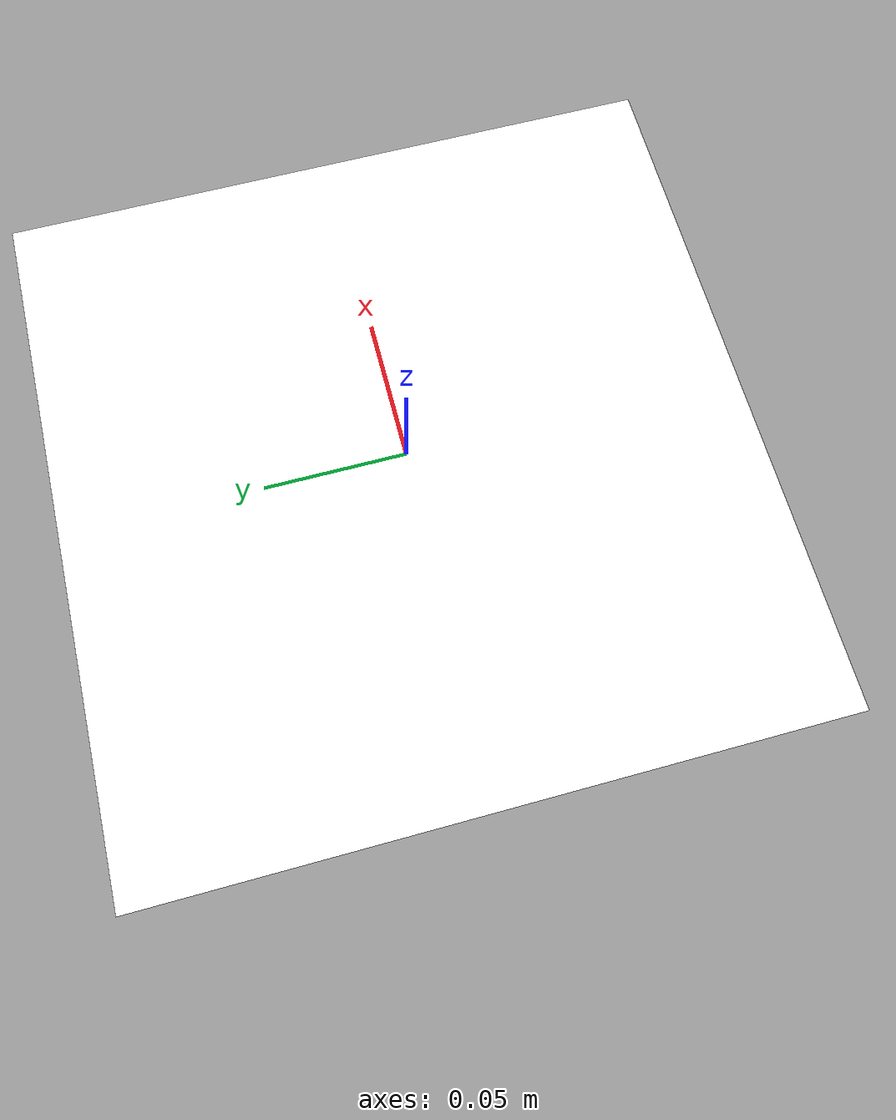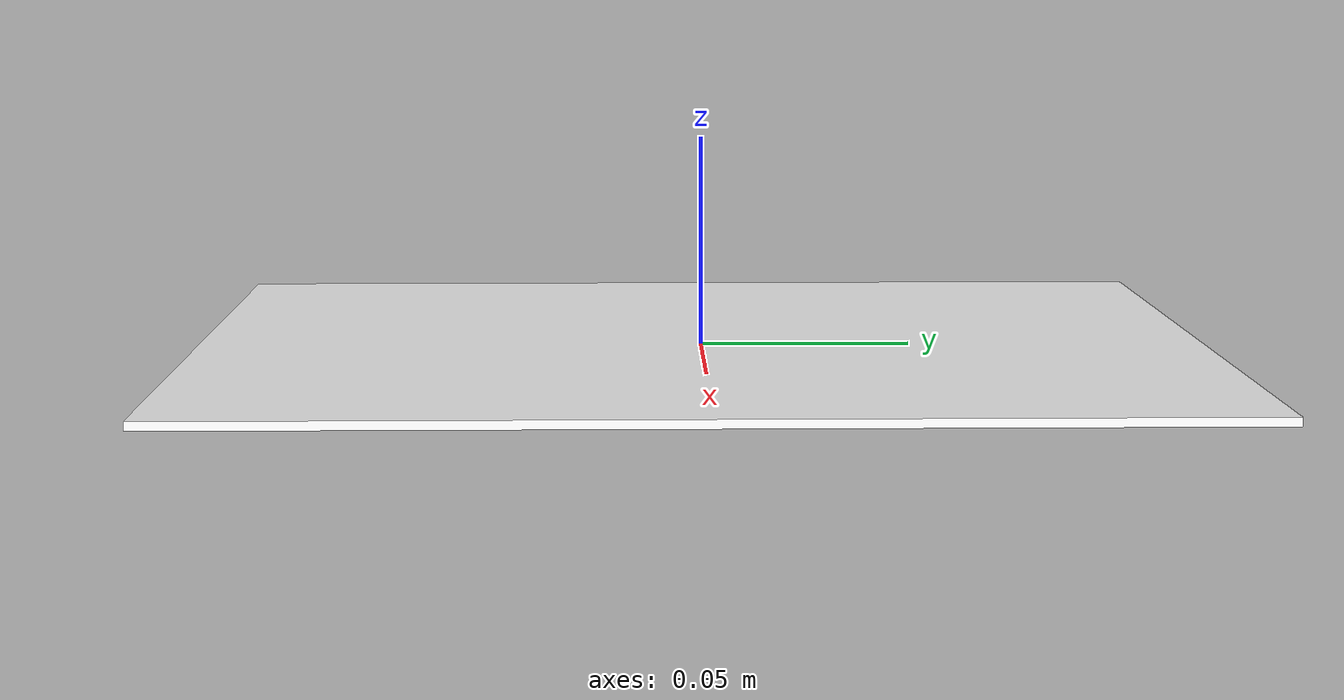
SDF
<?xml version="1.0"?>
<sdf version="1.9">
  <model name="aruco_marker_1">
    <static>true</static>
    <link name="link">
      <inertial>
        <mass>0.01</mass>
        <inertia>
          <ixx>1e-6</ixx><iyy>1e-6</iyy><izz>1e-6</izz>
          <ixy>0</ixy><ixz>0</ixz><iyz>0</iyz>
        </inertia>
      </inertial>
      <visual name="visual">
        <geometry>
          <box>
            <size>0.24 0.24 0.002</size>
          </box>
        </geometry>
        <material>
          <ambient>1 1 1 1</ambient>
          <diffuse>1 1 1 1</diffuse>
          <specular>0.05 0.05 0.05 1</specular>
          <pbr>
            <metal>
              <albedo_map>materials/textures/aruco_id1.png</albedo_map>
              <metalness>0.0</metalness>
              <roughness>1.0</roughness>
            </metal>
          </pbr>
        </material>
      </visual>
      <collision name="collision">
        <geometry>
          <box>
            <size>0.24 0.24 0.002</size>
          </box>
        </geometry>
      </collision>
    </link>
  </model>
</sdf>
